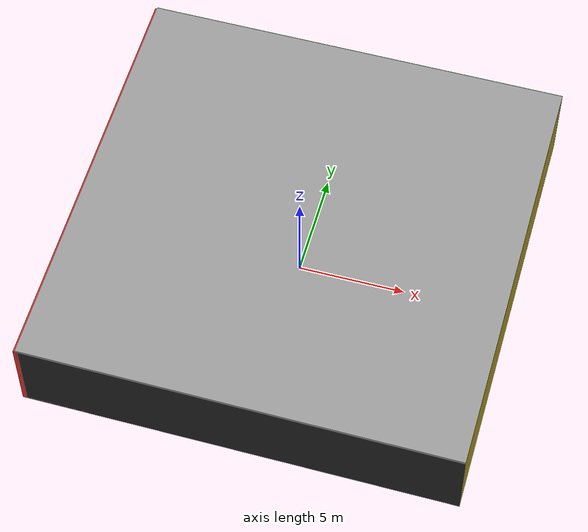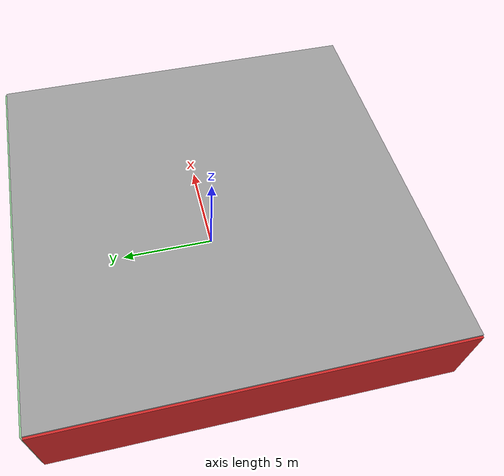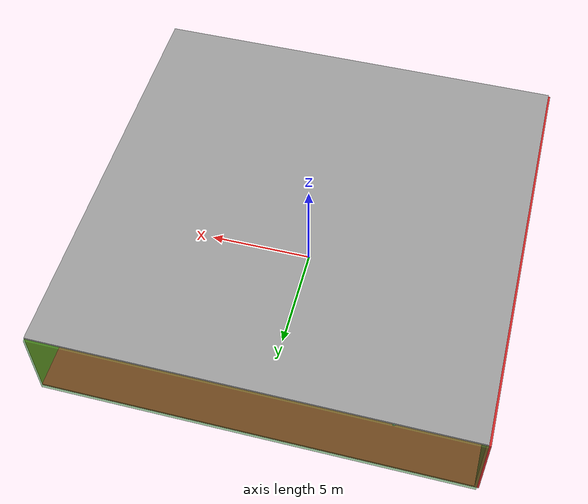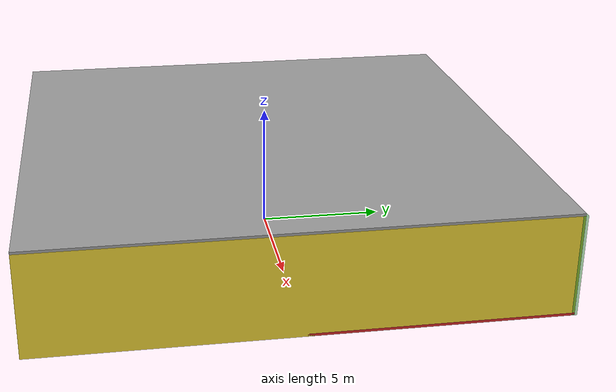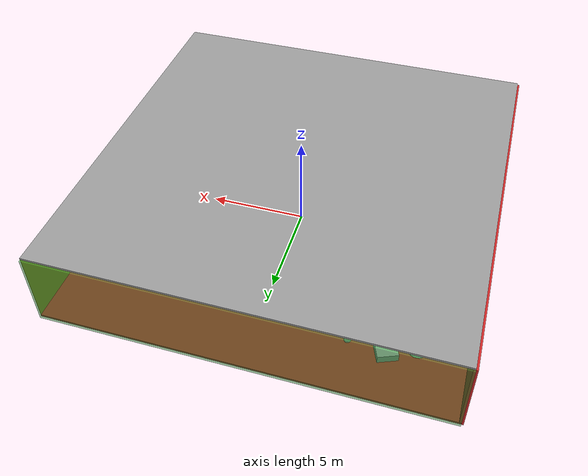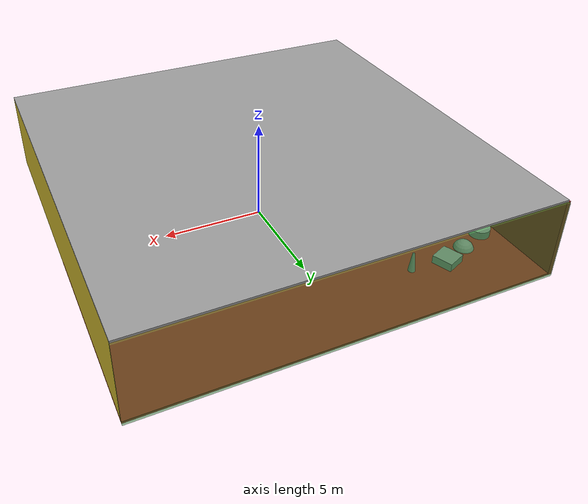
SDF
<sdf version="1.4">
 <world name="default">
  <physics type="ode">
   <max_step_size>0.001</max_step_size>
   <real_time_factor>1</real_time_factor>
   <real_time_update_rate>1000</real_time_update_rate>
   <gravity>0 0 -9.8</gravity>
  </physics>
  <scene><ambient>0.4 0.4 0.4 1</ambient><background>0.7 0.7 0.7 1</background><shadows>1</shadows></scene>
  <model name="Surrounding">
   <static>1</static>
   <link name="Ceiling">
    <collision name="Ceiling_Collision"><geometry><box><size>20 20 0.1</size></box></geometry></collision>
    <visual name="Ceiling_Visual">
     <geometry><box><size>20 20 0.1</size></box></geometry>
     <material>
      <script><uri>file://media/materials/scripts/gazebo.material</uri><name>Gazebo/GreyGradientSky</name></script>
     </material>
    </visual>
    <pose>0 0 4.05 0 0 0</pose>
   </link>
   <link name="Wall_South">
    <collision name="Wall_South_Collision">
     <geometry><box><size>20 0 4</size></box></geometry>
     <pose>0 0 2 0 -0 0</pose>
    </collision>
    <visual name="Wall_South_Visual">
     <pose>0 0 2 0 -0 0</pose>
     <geometry><box><size>20 0 4</size></box></geometry>
     <material>
      <script><uri>file://media/materials/scripts/gazebo.material</uri><name>Gazebo/Black</name></script>
     </material>
    </visual>
    <velocity_decay><linear>0</linear><angular>0</angular></velocity_decay>
    <pose>0 -10 0 0 -0 0</pose>
   </link>
   <link name="Wall_East">
    <collision name="Wall_21_Collision">
     <geometry><box><size>20 0 4</size></box></geometry>
     <pose>0 0 2 0 -0 0</pose>
    </collision>
    <visual name="Wall_21_Visual">
     <pose>0 0 2 0 -0 0</pose>
     <geometry><box><size>20 0 4</size></box></geometry>
     <material>
      <script><uri>file://media/materials/scripts/gazebo.material</uri><name>Gazebo/ZincYellow</name></script>
     </material>
    </visual>
    <velocity_decay><linear>0</linear><angular>0</angular></velocity_decay>
    <pose>10 0 0 0 -0 1.5708</pose>
   </link>
   <link name="Wall_North">
    <collision name="Wall_22_Collision">
     <geometry><box><size>20 0.2 4</size></box></geometry>
     <pose>0 0 2 0 -0 0</pose>
    </collision>
    <visual name="Wall_22_Visual">
     <pose>0 0 2 0 -0 0</pose>
     <geometry><box><size>20 0.2 4</size></box></geometry>
     <material>
      <script><uri>file://media/materials/scripts/gazebo.material</uri><name>Gazebo/GreenTransparent</name></script>
     </material>
    </visual>
    <velocity_decay><linear>0</linear><angular>0</angular></velocity_decay>
    <pose>0 10 0 0 -0 0</pose>
   </link>
   <link name="Wall_West">
    <collision name="Wall_23_Collision">
     <geometry><box><size>20 0.2 4</size></box></geometry>
     <pose>0 0 2 0 -0 0</pose>
    </collision>
    <visual name="Wall_23_Visual">
     <pose>0 0 2 0 -0 0</pose>
     <geometry><box><size>20 0.2 4</size></box></geometry>
     <material>
      <script><uri>file://media/materials/scripts/gazebo.material</uri><name>Gazebo/Red</name></script>
     </material>
    </visual>
    <velocity_decay><linear>0</linear><angular>0</angular></velocity_decay>
    <pose>-10 0 0 0 0 -1.5708</pose>
   </link>
   <link name="Ground_link">
    <collision name="collision">
     <pose>0 0 .05 0 -0 0</pose>
     <geometry><box><size>20 20 0.1</size></box></geometry>
    </collision>
    <visual name="visual">
     <pose>0 0 .05 0 -0 0</pose>
     <geometry><box><size>20 20 0.1</size></box></geometry>
     <material>
      <script><uri>file://media/materials/scripts/gazebo.material</uri><name>Gazebo/RedGlow</name></script>
     </material>
    </visual>
   </link>
   <static>1</static>
  </model>
  <spherical_coordinates>
   <surface_model>EARTH_WGS84</surface_model>
   <latitude_deg>0</latitude_deg>
   <longitude_deg>0</longitude_deg>
   <elevation>0</elevation>
   <heading_deg>0</heading_deg>
  </spherical_coordinates>
  <light name="lightball_0" type="diffuse">
   <diffuse>0.8 0.8 0.8 1</diffuse>
   <specular>0.2 0.2 0.2 1</specular>
   <attenuation>
    <range>100</range>
    <constant>0.7</constant>
    <linear>0.01</linear>
    <quadratic>0.001</quadratic>
   </attenuation>
   <direction>-0.5 0.1 -0.9</direction>
   <pose>2.52309910769 -0.799696496302 3.71000235955 0 0 0</pose>
  </light>
  <light name="lightball_1" type="diffuse">
   <diffuse>0.8 0.8 0.8 1</diffuse>
   <specular>0.2 0.2 0.2 1</specular>
   <attenuation>
    <range>100</range>
    <constant>0.7</constant>
    <linear>0.01</linear>
    <quadratic>0.001</quadratic>
   </attenuation>
   <direction>-0.5 0.1 -0.9</direction>
   <pose>-2.25914772815 -1.07567312381 3.24932125724 0 0 0</pose>
  </light>
  <light name="lightball_2" type="diffuse">
   <diffuse>0.8 0.8 0.8 1</diffuse>
   <specular>0.2 0.2 0.2 1</specular>
   <attenuation>
    <range>100</range>
    <constant>0.7</constant>
    <linear>0.01</linear>
    <quadratic>0.001</quadratic>
   </attenuation>
   <direction>-0.5 0.1 -0.9</direction>
   <pose>9.90039268065 -6.21895337336 2.50511914106 0 0 0</pose>
  </light>
  <light name="lightball_3" type="diffuse">
   <diffuse>0.8 0.8 0.8 1</diffuse>
   <specular>0.2 0.2 0.2 1</specular>
   <attenuation>
    <range>100</range>
    <constant>0.7</constant>
    <linear>0.01</linear>
    <quadratic>0.001</quadratic>
   </attenuation>
   <direction>-0.5 0.1 -0.9</direction>
   <pose>-6.54130411891 1.20734168991 3.69253855645 0 0 0</pose>
  </light>
  <light name="lightball_4" type="diffuse">
   <diffuse>0.8 0.8 0.8 1</diffuse>
   <specular>0.2 0.2 0.2 1</specular>
   <attenuation>
    <range>100</range>
    <constant>0.7</constant>
    <linear>0.01</linear>
    <quadratic>0.001</quadratic>
   </attenuation>
   <direction>-0.5 0.1 -0.9</direction>
   <pose>-0.103242838831 0.959516533266 1.42091377982 0 0 0</pose>
  </light>
  <light name="lightball_5" type="diffuse">
   <diffuse>0.8 0.8 0.8 1</diffuse>
   <specular>0.2 0.2 0.2 1</specular>
   <attenuation>
    <range>100</range>
    <constant>0.7</constant>
    <linear>0.01</linear>
    <quadratic>0.001</quadratic>
   </attenuation>
   <direction>-0.5 0.1 -0.9</direction>
   <pose>0.905485129398 5.03756550154 3.85949461176 0 0 0</pose>
  </light>
  <light name="lightball_6" type="diffuse">
   <diffuse>0.8 0.8 0.8 1</diffuse>
   <specular>0.2 0.2 0.2 1</specular>
   <attenuation>
    <range>100</range>
    <constant>0.7</constant>
    <linear>0.01</linear>
    <quadratic>0.001</quadratic>
   </attenuation>
   <direction>-0.5 0.1 -0.9</direction>
   <pose>6.83891434507 7.84144843255 3.84407722061 0 0 0</pose>
  </light>
  <light name="lightball_7" type="diffuse">
   <diffuse>0.8 0.8 0.8 1</diffuse>
   <specular>0.2 0.2 0.2 1</specular>
   <attenuation>
    <range>100</range>
    <constant>0.7</constant>
    <linear>0.01</linear>
    <quadratic>0.001</quadratic>
   </attenuation>
   <direction>-0.5 0.1 -0.9</direction>
   <pose>-4.17361084112 -6.76871642445 3.2811613301 0 0 0</pose>
  </light>
  <light name="lightball_8" type="diffuse">
   <diffuse>0.8 0.8 0.8 1</diffuse>
   <specular>0.2 0.2 0.2 1</specular>
   <attenuation>
    <range>100</range>
    <constant>0.7</constant>
    <linear>0.01</linear>
    <quadratic>0.001</quadratic>
   </attenuation>
   <direction>-0.5 0.1 -0.9</direction>
   <pose>-9.03187342921 -5.05796754088 3.38380795888 0 0 0</pose>
  </light>
  <light name="lightball_9" type="diffuse">
   <diffuse>0.8 0.8 0.8 1</diffuse>
   <specular>0.2 0.2 0.2 1</specular>
   <attenuation>
    <range>100</range>
    <constant>0.7</constant>
    <linear>0.01</linear>
    <quadratic>0.001</quadratic>
   </attenuation>
   <direction>-0.5 0.1 -0.9</direction>
   <pose>-6.35131822858 1.5381338328 2.03535888784 0 0 0</pose>
  </light>
  <include><uri>model://cabinet</uri><pose>-7.8782956926 -8.25593659286 0 0 0 0.607537221559</pose></include>
  <include>
   <uri>model://textured_shapes</uri>
   <pose>-7.59043476644 6.8492332798 0 0 0 1.96325213663</pose>
  </include>
  <include>
   <uri>model://textured_shapes</uri>
   <pose>-5.25853495594 5.17338000774 0 0 0 1.47542201751</pose>
  </include>
  <include>
   <uri>model://construction_cone</uri>
   <pose>-4.37267412485 7.23213383305 0 0 0 1.08443516321</pose>
  </include>
  <include>
   <uri>model://construction_cone</uri>
   <pose>1.43892939604 -3.84295826033 0 0 0 0.99575679735</pose>
  </include>
  <include><uri>model://table</uri><pose>1.72949861956 4.05416089328 0 0 0 2.54532613923</pose></include>
  <include><uri>model://cabinet</uri><pose>4.88598606623 0.843639057662 0 0 0 1.54127616256</pose></include>
  <include>
   <uri>model://construction_cone</uri>
   <pose>5.08844800703 3.95376730741 0 0 0 2.69052452323</pose>
  </include>
  <include><uri>model://cabinet</uri><pose>7.16909258075 1.71960967066 0 0 0 0.151087046187</pose></include>
 </world>
</sdf>

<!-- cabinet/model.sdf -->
<sdf version="1.5">
  <model name="cabinet">
    <static>true</static>
    <link name="cabinet_bottom_plate">
      <inertial>
        <pose>0 0 -1 0 0 0</pose>
        <inertia>
          <ixx>2.050000</ixx>
          <ixy>0</ixy>
          <ixz>0</ixz>
          <iyy>2.050000</iyy>
          <iyz>0</iyz>
          <izz>2.050000</izz>
        </inertia>
        <mass>25.000000</mass>
      </inertial>
      <collision name="cabinet_bottom_plate_geom">
        <pose>0 0 0.010000 0 0 0</pose>
        <geometry>
          <box>
            <size>0.450000 0.450000 0.020000</size>
          </box>
        </geometry>
      </collision>
      <visual name="cabinet_bottom_plate_geom_visual">
        <pose>0 0 0.010000 0 0 0</pose>
        <geometry>
          <box>
            <size>0.450000 0.450000 0.020000</size>
          </box>
        </geometry>
        <material>
          <script>
            <uri>model://media/materials/scripts/gazebo.material</uri>
            <name>Gazebo/Wood</name>
          </script>
        </material>
      </visual>
      <collision name="cabinet_bottom_plate_geom_cabinet_back_plate">
        <pose>0.235000 0 0.510000 0 0 0</pose>
        <geometry>
          <box>
            <size>0.020000 0.450000 1.020000</size>
          </box>
        </geometry>
      </collision>
      <visual name="cabinet_bottom_plate_geom_cabinet_back_plate_visual">
        <pose>0.235000 0 0.510000 0 0 0</pose>
        <geometry>
          <box>
            <size>0.020000 0.450000 1.020000</size>
          </box>
        </geometry>
        <material>
          <script>
            <uri>model://media/materials/scripts/gazebo.material</uri>
            <name>Gazebo/Wood</name>
          </script>
        </material>
      </visual>
      <collision name="cabinet_bottom_plate_geom_cabinet_left_plate">
        <pose>0 0.235000 0.510000 0 0 0</pose>
        <geometry>
          <box>
            <size>0.450000 0.020000 1.020000</size>
          </box>
        </geometry>
      </collision>
      <visual name="cabinet_bottom_plate_geom_cabinet_left_plate_visual">
        <pose>0 0.235000 0.510000 0 0 0</pose>
        <geometry>
          <box>
            <size>0.450000 0.020000 1.020000</size>
          </box>
        </geometry>
        <material>
          <script>
            <uri>model://media/materials/scripts/gazebo.material</uri>
            <name>Gazebo/Wood</name>
          </script>
        </material>
      </visual>
      <collision name="cabinet_bottom_plate_geom_cabinet_middle_plate">
        <pose>0 0 0.510000 0 0 0</pose>
        <geometry>
          <box>
            <size>0.450000 0.450000 0.020000</size>
          </box>
        </geometry>
      </collision>
      <visual name="cabinet_bottom_plate_geom_cabinet_middle_plate_visual">
        <pose>0 0 0.510000 0 0 0</pose>
        <geometry>
          <box>
            <size>0.450000 0.450000 0.020000</size>
          </box>
        </geometry>
        <material>
          <script>
            <uri>model://media/materials/scripts/gazebo.material</uri>
            <name>Gazebo/Wood</name>
          </script>
        </material>
      </visual>
      <collision name="cabinet_bottom_plate_geom_cabinet_right_plate">
        <pose>0 -0.235000 0.510000 0 0 0</pose>
        <geometry>
          <box>
            <size>0.450000 0.020000 1.020000</size>
          </box>
        </geometry>
      </collision>
      <visual name="cabinet_bottom_plate_geom_cabinet_right_plate_visual">
        <pose>0 -0.235000 0.510000 0 0 0</pose>
        <geometry>
          <box>
            <size>0.450000 0.020000 1.020000</size>
          </box>
        </geometry>
        <material>
          <script>
            <uri>model://media/materials/scripts/gazebo.material</uri>
            <name>Gazebo/Wood</name>
          </script>
        </material>
      </visual>
      <collision name="cabinet_bottom_plate_geom_cabinet_top_plate">
        <pose>0 0 1.010000 0 0 0</pose>
        <geometry>
          <box>
            <size>0.450000 0.450000 0.020000</size>
          </box>
        </geometry>
      </collision>
      <visual name="cabinet_bottom_plate_geom_cabinet_top_plate_visual">
        <pose>0 0 1.010000 0 0 0</pose>
        <geometry>
          <box>
            <size>0.450000 0.450000 0.020000</size>
          </box>
        </geometry>
        <material>
          <script>
            <uri>model://media/materials/scripts/gazebo.material</uri>
            <name>Gazebo/Wood</name>
          </script>
        </material>
      </visual>
    </link>
  </model>
</sdf>

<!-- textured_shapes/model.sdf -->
<sdf version="1.6">
  <model name="textured_shapes">
    <pose>0 0 0.5 0 0 0</pose>
    <link name="box">
      <pose>0 -1.5 0 0 0 0</pose>
      <collision name="collision">
        <geometry>
          <box>
            <size>1 1 1</size>
          </box>
        </geometry>
      </collision>
      <visual name="visual">
        <geometry>
          <box>
            <size>1 1 1</size>
          </box>
        </geometry>
        <material>
          <script>
            <uri>model://../model_source/models/textured_shapes/materials/scripts</uri>
            <uri>model://../model_source/models/textured_shapes/materials/textures</uri>
            <name>TexturedShape/Squares</name>
          </script>
        </material>
      </visual>
    </link>
    <link name="sphere">
      <collision name="collision">
        <geometry>
          <sphere>
            <radius>0.5</radius>
          </sphere>
        </geometry>
      </collision>
      <visual name="visual">
        <geometry>
          <sphere>
            <radius>0.5</radius>
          </sphere>
        </geometry>
        <material>
          <script>
            <uri>model://../model_source/models/textured_shapes/materials/scripts</uri>
            <uri>model://../model_source/models/textured_shapes/materials/textures</uri>
            <name>TexturedShape/Squares</name>
          </script>
        </material>
      </visual>
    </link>
    <link name="cylinder">
      <pose>0 1.5 0 0 0 0</pose>
      <collision name="collision">
        <geometry>
          <cylinder>
            <radius>0.5</radius>
            <length>1</length>
          </cylinder>
        </geometry>
      </collision>
      <visual name="visual">
        <geometry>
          <cylinder>
            <radius>0.5</radius>
            <length>1</length>
          </cylinder>
        </geometry>
        <material>
          <script>
            <uri>model://../model_source/models/textured_shapes/materials/scripts</uri>
            <uri>model://../model_source/models/textured_shapes/materials/textures</uri>
            <name>TexturedShape/Squares</name>
          </script>
        </material>
      </visual>
    </link>
  </model>
</sdf>

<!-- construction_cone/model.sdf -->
<sdf version="1.5">
  <model name="Construction Cone">
    <link name="link">
      <collision name="collision">
        <geometry>
          <mesh>
            <scale>10 10 10</scale>
            <uri>file://isr-testbed/construction_cone/meshes/construction_cone.dae</uri>
          </mesh>
        </geometry>
      </collision>
      <visual name="visual">
        <geometry>
          <mesh>
            <scale>10 10 10</scale>
            <uri>file://isr-testbed/construction_cone/meshes/construction_cone.dae</uri>
          </mesh>
        </geometry>
      </visual>
    </link>
  </model>
</sdf>

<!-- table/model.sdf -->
<sdf version="1.5">
  <model name="table">
    <static>true</static>
    <link name="link">
      <collision name="surface">
        <pose>0 0 1.0 0 0 0</pose>
        <geometry>
          <box>
            <size>1.5 0.8 0.03</size>
          </box>
        </geometry>
        <surface>
          <friction>
            <ode>
              <mu>0.6</mu>
              <mu2>0.6</mu2>
            </ode>
          </friction>
        </surface>
      </collision>
      <visual name="visual1">
        <pose>0 0 1.0 0 0 0</pose>
        <geometry>
          <box>
            <size>1.5 0.8 0.03</size>
          </box>
        </geometry>
        <material>
          <script>
            <uri>model://media/materials/scripts/gazebo.material</uri>
            <name>Gazebo/Wood</name>
          </script>
        </material>
      </visual>
      <collision name="front_left_leg">
        <pose>0.68 0.38 0.5 0 0 0</pose>
        <geometry>
          <cylinder>
            <radius>0.02</radius>
            <length>1.0</length>
          </cylinder>
        </geometry>
      </collision>
      <visual name="front_left_leg">
        <pose>0.68 0.38 0.5 0 0 0</pose>
        <geometry>
          <cylinder>
            <radius>0.02</radius>
            <length>1.0</length>
          </cylinder>
        </geometry>
        <material>
          <script>
            <uri>model://media/materials/scripts/gazebo.material</uri>
            <name>Gazebo/Grey</name>
          </script>
        </material>
      </visual>
      <collision name="front_right_leg">
        <pose>0.68 -0.38 0.5 0 0 0</pose>
        <geometry>
          <cylinder>
            <radius>0.02</radius>
            <length>1.0</length>
          </cylinder>
        </geometry>
      </collision>
      <visual name="front_right_leg">
        <pose>0.68 -0.38 0.5 0 0 0</pose>
        <geometry>
          <cylinder>
            <radius>0.02</radius>
            <length>1.0</length>
          </cylinder>
        </geometry>
        <material>
          <script>
            <uri>model://media/materials/scripts/gazebo.material</uri>
            <name>Gazebo/Grey</name>
          </script>
        </material>
      </visual>
      <collision name="back_right_leg">
        <pose>-0.68 -0.38 0.5 0 0 0</pose>
        <geometry>
          <cylinder>
            <radius>0.02</radius>
            <length>1.0</length>
          </cylinder>
        </geometry>
      </collision>
      <visual name="back_right_leg">
        <pose>-0.68 -0.38 0.5 0 0 0</pose>
        <geometry>
          <cylinder>
            <radius>0.02</radius>
            <length>1.0</length>
          </cylinder>
        </geometry>
        <material>
          <script>
            <uri>model://media/materials/scripts/gazebo.material</uri>
            <name>Gazebo/Grey</name>
          </script>
        </material>
      </visual>
      <collision name="back_left_leg">
        <pose>-0.68 0.38 0.5 0 0 0</pose>
        <geometry>
          <cylinder>
            <radius>0.02</radius>
            <length>1.0</length>
          </cylinder>
        </geometry>
      </collision>
      <visual name="back_left_leg">
        <pose>-0.68 0.38 0.5 0 0 0</pose>
        <geometry>
          <cylinder>
            <radius>0.02</radius>
            <length>1.0</length>
          </cylinder>
        </geometry>
        <material>
          <script>
            <uri>model://media/materials/scripts/gazebo.material</uri>
            <name>Gazebo/Grey</name>
          </script>
        </material>
      </visual>
    </link>
  </model>
</sdf>
